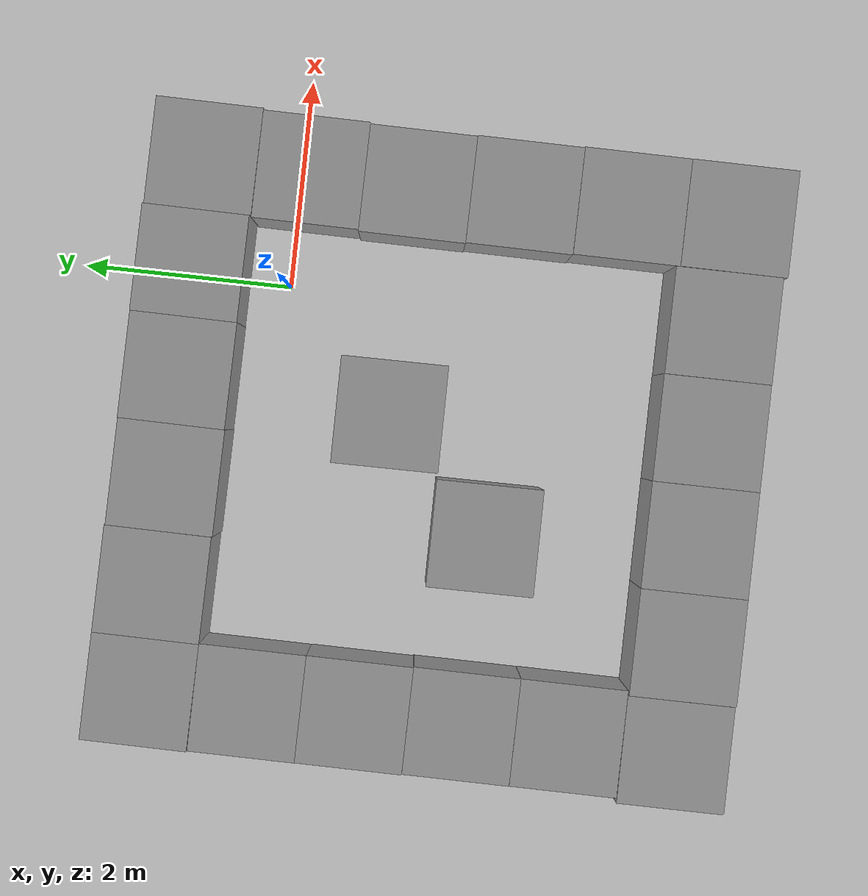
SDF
<sdf version="1.6">
 <world name="default">
  <light name="sun" type="directional">
   <pose>0 0 10 0 -0 0</pose>
   <diffuse>0.8 0.8 0.8 1</diffuse>
   <specular>0.1 0.1 0.1 1</specular>
   <attenuation>
    <range>1000</range>
    <constant>0.9</constant>
    <linear>0.01</linear>
    <quadratic>0.001</quadratic>
   </attenuation>
   <direction>-0.5 0.5 -1</direction>
  </light>
  <model name="ground_plane">
   <static>1</static>
   <link name="link">
    <collision name="collision">
     <geometry><plane><normal>0 0 1</normal><size>100 100</size></plane></geometry>
     <surface><friction><ode><mu>100</mu><mu2>50</mu2></ode></friction></surface>
    </collision>
    <visual name="visual">
     <cast_shadows>0</cast_shadows>
     <geometry><plane><normal>0 0 1</normal><size>100 100</size></plane></geometry>
     <material>
      <script><uri>file://media/materials/scripts/gazebo.material</uri><name>Gazebo/Grey</name></script>
     </material>
    </visual>
   </link>
  </model>
  <gravity>0 0 -9.8</gravity>
  <magnetic_field>6e-06 2.3e-05 -4.2e-05</magnetic_field>
  <atmosphere type="adiabatic"/>
  <physics name="default_physics" default="0" type="ode">
   <max_step_size>0.001</max_step_size>
   <real_time_factor>1</real_time_factor>
   <real_time_update_rate>1000</real_time_update_rate>
  </physics>
  <scene><ambient>0.4 0.4 0.4 1</ambient><background>0.7 0.7 0.7 1</background><shadows>1</shadows></scene>
  <spherical_coordinates>
   <surface_model>EARTH_WGS84</surface_model>
   <latitude_deg>0</latitude_deg>
   <longitude_deg>0</longitude_deg>
   <elevation>0</elevation>
   <heading_deg>0</heading_deg>
  </spherical_coordinates>
  <model name="unit_box_0">
   <pose>0.075652 0.900437 0.499995 0 -1e-05 -0.008265</pose>
   <link name="link">
    <inertial>
     <mass>1</mass>
     <inertia>
      <ixx>0.166667</ixx>
      <ixy>0</ixy>
      <ixz>0</ixz>
      <iyy>0.166667</iyy>
      <iyz>0</iyz>
      <izz>0.166667</izz>
     </inertia>
    </inertial>
    <collision name="collision"><geometry><box><size>1 1 1</size></box></geometry></collision>
    <visual name="visual">
     <geometry><box><size>1 1 1</size></box></geometry>
     <material>
      <script><name>Gazebo/Grey</name><uri>file://media/materials/scripts/gazebo.material</uri></script>
     </material>
    </visual>
   </link>
  </model>
  <model name="unit_box_1">
   <pose>-0.924336 0.905647 0.499995 -0 1e-05 -0.00827</pose>
   <link name="link">
    <inertial>
     <mass>1</mass>
     <inertia>
      <ixx>0.166667</ixx>
      <ixy>0</ixy>
      <ixz>0</ixz>
      <iyy>0.166667</iyy>
      <iyz>0</iyz>
      <izz>0.166667</izz>
     </inertia>
    </inertial>
    <collision name="collision"><geometry><box><size>1 1 1</size></box></geometry></collision>
    <visual name="visual">
     <geometry><box><size>1 1 1</size></box></geometry>
     <material>
      <script><name>Gazebo/Grey</name><uri>file://media/materials/scripts/gazebo.material</uri></script>
     </material>
    </visual>
   </link>
  </model>
  <model name="unit_box_2">
   <pose>-1.92445 0.910056 0.499995 1e-05 -0 -0.008113</pose>
   <link name="link">
    <inertial>
     <mass>1</mass>
     <inertia>
      <ixx>0.166667</ixx>
      <ixy>0</ixy>
      <ixz>0</ixz>
      <iyy>0.166667</iyy>
      <iyz>0</iyz>
      <izz>0.166667</izz>
     </inertia>
    </inertial>
    <collision name="collision"><geometry><box><size>1 1 1</size></box></geometry></collision>
    <visual name="visual">
     <geometry><box><size>1 1 1</size></box></geometry>
     <material>
      <script><name>Gazebo/Grey</name><uri>file://media/materials/scripts/gazebo.material</uri></script>
     </material>
    </visual>
   </link>
  </model>
  <model name="unit_box_3">
   <pose>-2.92442 0.926835 0.499995 -1e-05 0 -0.008193</pose>
   <link name="link">
    <inertial>
     <mass>1</mass>
     <inertia>
      <ixx>0.166667</ixx>
      <ixy>0</ixy>
      <ixz>0</ixz>
      <iyy>0.166667</iyy>
      <iyz>0</iyz>
      <izz>0.166667</izz>
     </inertia>
    </inertial>
    <collision name="collision"><geometry><box><size>1 1 1</size></box></geometry></collision>
    <visual name="visual">
     <geometry><box><size>1 1 1</size></box></geometry>
     <material>
      <script><name>Gazebo/Grey</name><uri>file://media/materials/scripts/gazebo.material</uri></script>
     </material>
    </visual>
   </link>
  </model>
  <model name="unit_box_4">
   <pose>-3.9244 0.934969 0.499995 -1e-05 0 -0.008207</pose>
   <link name="link">
    <inertial>
     <mass>1</mass>
     <inertia>
      <ixx>0.166667</ixx>
      <ixy>0</ixy>
      <ixz>0</ixz>
      <iyy>0.166667</iyy>
      <iyz>0</iyz>
      <izz>0.166667</izz>
     </inertia>
    </inertial>
    <collision name="collision"><geometry><box><size>1 1 1</size></box></geometry></collision>
    <visual name="visual">
     <geometry><box><size>1 1 1</size></box></geometry>
     <material>
      <script><name>Gazebo/Grey</name><uri>file://media/materials/scripts/gazebo.material</uri></script>
     </material>
    </visual>
   </link>
  </model>
  <model name="unit_box_5">
   <pose>-3.92087 -0.067186 0.499995 0 -1e-05 -0.004022</pose>
   <link name="link">
    <inertial>
     <mass>1</mass>
     <inertia>
      <ixx>0.166667</ixx>
      <ixy>0</ixy>
      <ixz>0</ixz>
      <iyy>0.166667</iyy>
      <iyz>0</iyz>
      <izz>0.166667</izz>
     </inertia>
    </inertial>
    <collision name="collision"><geometry><box><size>1 1 1</size></box></geometry></collision>
    <visual name="visual">
     <geometry><box><size>1 1 1</size></box></geometry>
     <material>
      <script><name>Gazebo/Grey</name><uri>file://media/materials/scripts/gazebo.material</uri></script>
     </material>
    </visual>
   </link>
  </model>
  <model name="unit_box_6">
   <pose>-3.92273 -1.06719 0.499995 0 -1e-05 -0.004021</pose>
   <link name="link">
    <inertial>
     <mass>1</mass>
     <inertia>
      <ixx>0.166667</ixx>
      <ixy>0</ixy>
      <ixz>0</ixz>
      <iyy>0.166667</iyy>
      <iyz>0</iyz>
      <izz>0.166667</izz>
     </inertia>
    </inertial>
    <collision name="collision"><geometry><box><size>1 1 1</size></box></geometry></collision>
    <visual name="visual">
     <geometry><box><size>1 1 1</size></box></geometry>
     <material>
      <script><name>Gazebo/Grey</name><uri>file://media/materials/scripts/gazebo.material</uri></script>
     </material>
    </visual>
   </link>
  </model>
  <model name="unit_box_7">
   <pose>-3.91951 -2.06734 0.499995 0 1e-05 -0.00377</pose>
   <link name="link">
    <inertial>
     <mass>1</mass>
     <inertia>
      <ixx>0.166667</ixx>
      <ixy>0</ixy>
      <ixz>0</ixz>
      <iyy>0.166667</iyy>
      <iyz>0</iyz>
      <izz>0.166667</izz>
     </inertia>
    </inertial>
    <collision name="collision"><geometry><box><size>1 1 1</size></box></geometry></collision>
    <visual name="visual">
     <geometry><box><size>1 1 1</size></box></geometry>
     <material>
      <script><name>Gazebo/Grey</name><uri>file://media/materials/scripts/gazebo.material</uri></script>
     </material>
    </visual>
   </link>
  </model>
  <model name="unit_box_8">
   <pose>-3.92089 -3.06753 0.499995 0 -1e-05 -0.003428</pose>
   <link name="link">
    <inertial>
     <mass>1</mass>
     <inertia>
      <ixx>0.166667</ixx>
      <ixy>0</ixy>
      <ixz>0</ixz>
      <iyy>0.166667</iyy>
      <iyz>0</iyz>
      <izz>0.166667</izz>
     </inertia>
    </inertial>
    <collision name="collision"><geometry><box><size>1 1 1</size></box></geometry></collision>
    <visual name="visual">
     <geometry><box><size>1 1 1</size></box></geometry>
     <material>
      <script><name>Gazebo/Grey</name><uri>file://media/materials/scripts/gazebo.material</uri></script>
     </material>
    </visual>
   </link>
  </model>
  <model name="unit_box_9">
   <pose>-3.96831 -4.06909 0.499995 1e-05 -0 -6.2e-05</pose>
   <link name="link">
    <inertial>
     <mass>1</mass>
     <inertia>
      <ixx>0.166667</ixx>
      <ixy>0</ixy>
      <ixz>0</ixz>
      <iyy>0.166667</iyy>
      <iyz>0</iyz>
      <izz>0.166667</izz>
     </inertia>
    </inertial>
    <collision name="collision"><geometry><box><size>1 1 1</size></box></geometry></collision>
    <visual name="visual">
     <geometry><box><size>1 1 1</size></box></geometry>
     <material>
      <script><name>Gazebo/Grey</name><uri>file://media/materials/scripts/gazebo.material</uri></script>
     </material>
    </visual>
   </link>
  </model>
  <model name="unit_box_10">
   <pose>-2.96825 -4.0803 0.499995 0 -9e-06 3.6e-05</pose>
   <link name="link">
    <inertial>
     <mass>1</mass>
     <inertia>
      <ixx>0.166667</ixx>
      <ixy>0</ixy>
      <ixz>0</ixz>
      <iyy>0.166667</iyy>
      <iyz>0</iyz>
      <izz>0.166667</izz>
     </inertia>
    </inertial>
    <collision name="collision"><geometry><box><size>1 1 1</size></box></geometry></collision>
    <visual name="visual">
     <geometry><box><size>1 1 1</size></box></geometry>
     <material>
      <script><name>Gazebo/Grey</name><uri>file://media/materials/scripts/gazebo.material</uri></script>
     </material>
    </visual>
   </link>
  </model>
  <model name="unit_box_11">
   <pose>-1.96823 -4.07956 0.499995 0 1e-05 2.6e-05</pose>
   <link name="link">
    <inertial>
     <mass>1</mass>
     <inertia>
      <ixx>0.166667</ixx>
      <ixy>0</ixy>
      <ixz>0</ixz>
      <iyy>0.166667</iyy>
      <iyz>0</iyz>
      <izz>0.166667</izz>
     </inertia>
    </inertial>
    <collision name="collision"><geometry><box><size>1 1 1</size></box></geometry></collision>
    <visual name="visual">
     <geometry><box><size>1 1 1</size></box></geometry>
     <material>
      <script><name>Gazebo/Grey</name><uri>file://media/materials/scripts/gazebo.material</uri></script>
     </material>
    </visual>
   </link>
  </model>
  <model name="unit_box_12">
   <pose>-0.968103 -4.07998 0.499995 -0 1e-05 -0.00022</pose>
   <link name="link">
    <inertial>
     <mass>1</mass>
     <inertia>
      <ixx>0.166667</ixx>
      <ixy>0</ixy>
      <ixz>0</ixz>
      <iyy>0.166667</iyy>
      <iyz>0</iyz>
      <izz>0.166667</izz>
     </inertia>
    </inertial>
    <collision name="collision"><geometry><box><size>1 1 1</size></box></geometry></collision>
    <visual name="visual">
     <geometry><box><size>1 1 1</size></box></geometry>
     <material>
      <script><name>Gazebo/Grey</name><uri>file://media/materials/scripts/gazebo.material</uri></script>
     </material>
    </visual>
   </link>
  </model>
  <model name="unit_box_13">
   <pose>0.032432 -4.08321 0.499995 0 -1e-05 -0.001311</pose>
   <link name="link">
    <inertial>
     <mass>1</mass>
     <inertia>
      <ixx>0.166667</ixx>
      <ixy>0</ixy>
      <ixz>0</ixz>
      <iyy>0.166667</iyy>
      <iyz>0</iyz>
      <izz>0.166667</izz>
     </inertia>
    </inertial>
    <collision name="collision"><geometry><box><size>1 1 1</size></box></geometry></collision>
    <visual name="visual">
     <geometry><box><size>1 1 1</size></box></geometry>
     <material>
      <script><name>Gazebo/Grey</name><uri>file://media/materials/scripts/gazebo.material</uri></script>
     </material>
    </visual>
   </link>
  </model>
  <model name="unit_box_14">
   <pose>1.03367 -4.12519 0.5 0 0 -0.004095</pose>
   <link name="link">
    <inertial>
     <mass>1</mass>
     <inertia>
      <ixx>0.166667</ixx>
      <ixy>0</ixy>
      <ixz>0</ixz>
      <iyy>0.166667</iyy>
      <iyz>0</iyz>
      <izz>0.166667</izz>
     </inertia>
    </inertial>
    <collision name="collision"><geometry><box><size>1 1 1</size></box></geometry></collision>
    <visual name="visual">
     <geometry><box><size>1 1 1</size></box></geometry>
     <material>
      <script><name>Gazebo/Grey</name><uri>file://media/materials/scripts/gazebo.material</uri></script>
     </material>
    </visual>
   </link>
  </model>
  <model name="unit_box_15">
   <pose>1.03611 -3.12479 0.499995 0 1e-05 -0.004879</pose>
   <link name="link">
    <inertial>
     <mass>1</mass>
     <inertia>
      <ixx>0.166667</ixx>
      <ixy>0</ixy>
      <ixz>0</ixz>
      <iyy>0.166667</iyy>
      <iyz>0</iyz>
      <izz>0.166667</izz>
     </inertia>
    </inertial>
    <collision name="collision"><geometry><box><size>1 1 1</size></box></geometry></collision>
    <visual name="visual">
     <geometry><box><size>1 1 1</size></box></geometry>
     <material>
      <script><name>Gazebo/Grey</name><uri>file://media/materials/scripts/gazebo.material</uri></script>
     </material>
    </visual>
   </link>
  </model>
  <model name="unit_box_16">
   <pose>1.03384 -2.12425 0.499995 -1e-05 -0 -0.005904</pose>
   <link name="link">
    <inertial>
     <mass>1</mass>
     <inertia>
      <ixx>0.166667</ixx>
      <ixy>0</ixy>
      <ixz>0</ixz>
      <iyy>0.166667</iyy>
      <iyz>0</iyz>
      <izz>0.166667</izz>
     </inertia>
    </inertial>
    <collision name="collision"><geometry><box><size>1 1 1</size></box></geometry></collision>
    <visual name="visual">
     <geometry><box><size>1 1 1</size></box></geometry>
     <material>
      <script><name>Gazebo/Grey</name><uri>file://media/materials/scripts/gazebo.material</uri></script>
     </material>
    </visual>
   </link>
  </model>
  <model name="unit_box_17">
   <pose>1.03137 -1.12409 0.499995 9e-06 -0 -0.006164</pose>
   <link name="link">
    <inertial>
     <mass>1</mass>
     <inertia>
      <ixx>0.166667</ixx>
      <ixy>0</ixy>
      <ixz>0</ixz>
      <iyy>0.166667</iyy>
      <iyz>0</iyz>
      <izz>0.166667</izz>
     </inertia>
    </inertial>
    <collision name="collision"><geometry><box><size>1 1 1</size></box></geometry></collision>
    <visual name="visual">
     <geometry><box><size>1 1 1</size></box></geometry>
     <material>
      <script><name>Gazebo/Grey</name><uri>file://media/materials/scripts/gazebo.material</uri></script>
     </material>
    </visual>
   </link>
  </model>
  <model name="unit_box_18">
   <pose>1.05235 -0.124159 0.499995 -1e-05 0 -0.006229</pose>
   <link name="link">
    <inertial>
     <mass>1</mass>
     <inertia>
      <ixx>0.166667</ixx>
      <ixy>0</ixy>
      <ixz>0</ixz>
      <iyy>0.166667</iyy>
      <iyz>0</iyz>
      <izz>0.166667</izz>
     </inertia>
    </inertial>
    <collision name="collision"><geometry><box><size>1 1 1</size></box></geometry></collision>
    <visual name="visual">
     <geometry><box><size>1 1 1</size></box></geometry>
     <material>
      <script><name>Gazebo/Grey</name><uri>file://media/materials/scripts/gazebo.material</uri></script>
     </material>
    </visual>
   </link>
  </model>
  <model name="unit_box_19">
   <pose>1.07551 0.877101 0.499995 0 -1e-05 -0.008272</pose>
   <link name="link">
    <inertial>
     <mass>1</mass>
     <inertia>
      <ixx>0.166667</ixx>
      <ixy>0</ixy>
      <ixz>0</ixz>
      <iyy>0.166667</iyy>
      <iyz>0</iyz>
      <izz>0.166667</izz>
     </inertia>
    </inertial>
    <collision name="collision"><geometry><box><size>1 1 1</size></box></geometry></collision>
    <visual name="visual">
     <geometry><box><size>1 1 1</size></box></geometry>
     <material>
      <script><name>Gazebo/Grey</name><uri>file://media/materials/scripts/gazebo.material</uri></script>
     </material>
    </visual>
   </link>
  </model>
  <model name="unit_box_20">
   <pose>-2.16624 -2.09666 0.499995 0 -1e-05 0.006</pose>
   <link name="link">
    <inertial>
     <mass>1</mass>
     <inertia>
      <ixx>0.166667</ixx>
      <ixy>0</ixy>
      <ixz>0</ixz>
      <iyy>0.166667</iyy>
      <iyz>0</iyz>
      <izz>0.166667</izz>
     </inertia>
    </inertial>
    <collision name="collision"><geometry><box><size>1 1 1</size></box></geometry></collision>
    <visual name="visual">
     <geometry><box><size>1 1 1</size></box></geometry>
     <material>
      <script><name>Gazebo/Grey</name><uri>file://media/materials/scripts/gazebo.material</uri></script>
     </material>
    </visual>
   </link>
  </model>
  <model name="unit_box_21">
   <pose>-1.11798 -1.09414 0.499995 -1e-05 -0 0.006438</pose>
   <link name="link">
    <inertial>
     <mass>1</mass>
     <inertia>
      <ixx>0.166667</ixx>
      <ixy>0</ixy>
      <ixz>0</ixz>
      <iyy>0.166667</iyy>
      <iyz>0</iyz>
      <izz>0.166667</izz>
     </inertia>
    </inertial>
    <collision name="collision"><geometry><box><size>1 1 1</size></box></geometry></collision>
    <visual name="visual">
     <geometry><box><size>1 1 1</size></box></geometry>
     <material>
      <script><name>Gazebo/Grey</name><uri>file://media/materials/scripts/gazebo.material</uri></script>
     </material>
    </visual>
   </link>
  </model>
 </world>
</sdf>
